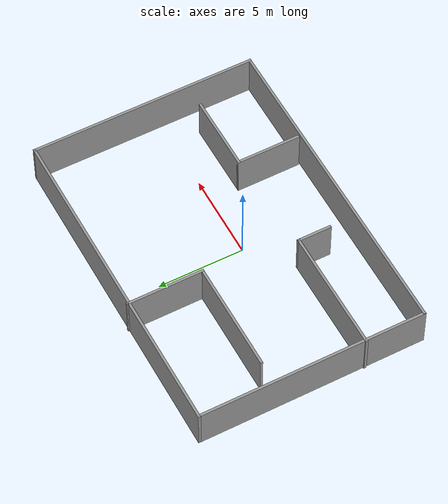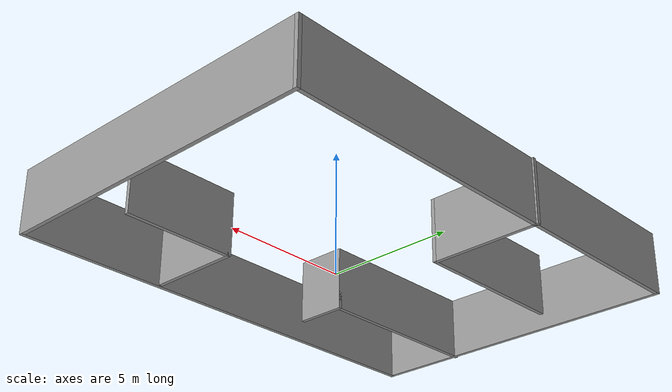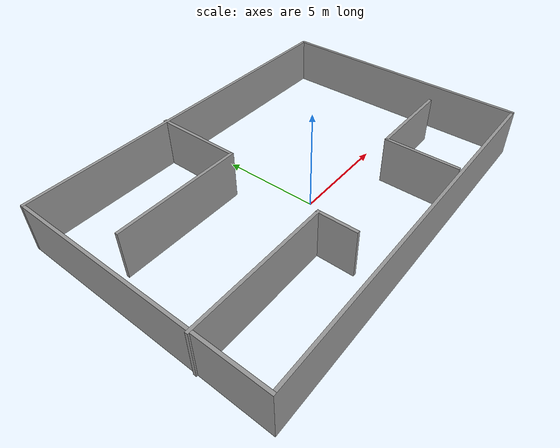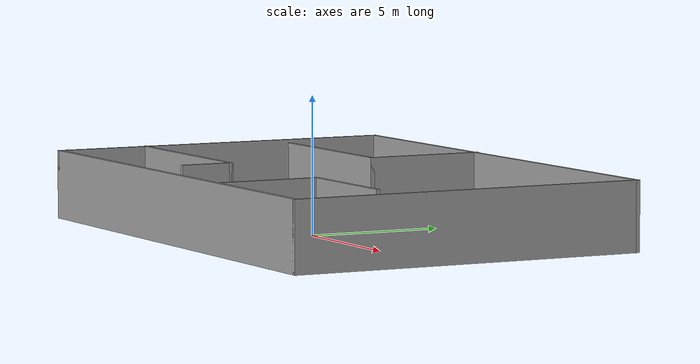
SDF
<?xml version='1.0'?>
<sdf version='1.7'>
  <model name='room'>
    <pose>0.005055 1.04085 0 0 -0 0</pose>
    <link name='Wall_14'>
      <collision name='Wall_14_Collision'>
        <geometry>
          <box>
            <size>13.25 0.15 2.5</size>
          </box>
        </geometry>
        <pose>0 0 1.25 0 -0 0</pose>
      </collision>
      <visual name='Wall_14_Visual'>
        <pose>0 0 1.25 0 -0 0</pose>
        <geometry>
          <box>
            <size>13.25 0.15 2.5</size>
          </box>
        </geometry>
        <material>
          <script>
            <uri>file://media/materials/scripts/gazebo.material</uri>
            <name>Gazebo/Grey</name>
          </script>
          <ambient>1 1 1 1</ambient>
        </material>
        <meta>
          <layer>0</layer>
        </meta>
      </visual>
      <pose>-9.38962 -0.035378 0 0 -0 -1.5708</pose>
    </link>
    <link name='Wall_15'>
      <collision name='Wall_15_Collision'>
        <geometry>
          <box>
            <size>19 0.15 2.5</size>
          </box>
        </geometry>
        <pose>0 0 1.25 0 -0 0</pose>
      </collision>
      <visual name='Wall_15_Visual'>
        <pose>0 0 1.25 0 -0 0</pose>
        <geometry>
          <box>
            <size>19 0.15 2.5</size>
          </box>
        </geometry>
        <material>
          <script>
            <uri>file://media/materials/scripts/gazebo.material</uri>
            <name>Gazebo/Grey</name>
          </script>
          <ambient>1 1 1 1</ambient>
        </material>
        <meta>
          <layer>0</layer>
        </meta>
      </visual>
      <pose>0.035378 -6.58538 0 0 -0 0</pose>
    </link>
    <link name='Wall_16'>
      <collision name='Wall_16_Collision'>
        <geometry>
          <box>
            <size>13.25 0.15 2.5</size>
          </box>
        </geometry>
        <pose>0 0 1.25 0 -0 0</pose>
      </collision>
      <visual name='Wall_16_Visual'>
        <pose>0 0 1.25 0 -0 0</pose>
        <geometry>
          <box>
            <size>13.25 0.15 2.5</size>
          </box>
        </geometry>
        <material>
          <script>
            <uri>file://media/materials/scripts/gazebo.material</uri>
            <name>Gazebo/Grey</name>
          </script>
          <ambient>1 1 1 1</ambient>
        </material>
        <meta>
          <layer>0</layer>
        </meta>
      </visual>
      <pose>9.46038 -0.035378 0 0 -0 1.5708</pose>
    </link>
    <link name='Wall_17'>
      <collision name='Wall_17_Collision'>
        <geometry>
          <box>
            <size>19 0.15 2.5</size>
          </box>
        </geometry>
        <pose>0 0 1.25 0 -0 0</pose>
      </collision>
      <visual name='Wall_17_Visual'>
        <pose>0 0 1.25 0 -0 0</pose>
        <geometry>
          <box>
            <size>19 0.15 2.5</size>
          </box>
        </geometry>
        <material>
          <script>
            <uri>file://media/materials/scripts/gazebo.material</uri>
            <name>Gazebo/Grey</name>
          </script>
          <ambient>1 1 1 1</ambient>
        </material>
        <meta>
          <layer>0</layer>
        </meta>
      </visual>
      <pose>0.035378 6.51462 0 0 -0 3.14159</pose>
    </link>
    <link name='Wall_19'>
      <collision name='Wall_19_Collision'>
        <geometry>
          <box>
            <size>4.5 0.15 2.5</size>
          </box>
        </geometry>
        <pose>0 0 1.25 0 -0 0</pose>
      </collision>
      <visual name='Wall_19_Visual'>
        <pose>0 0 1.25 0 -0 0</pose>
        <geometry>
          <box>
            <size>4.5 0.15 2.5</size>
          </box>
        </geometry>
        <material>
          <script>
            <uri>file://media/materials/scripts/gazebo.material</uri>
            <name>Gazebo/Grey</name>
          </script>
          <ambient>1 1 1 1</ambient>
        </material>
        <meta>
          <layer>0</layer>
        </meta>
      </visual>
      <pose>-1.6771 4.41038 0 0 -0 -1.5708</pose>
    </link>
    <link name='Wall_20'>
      <collision name='Wall_20_Collision'>
        <geometry>
          <box>
            <size>6.5 0.15 2.5</size>
          </box>
        </geometry>
        <pose>0 0 1.25 0 -0 0</pose>
      </collision>
      <visual name='Wall_20_Visual'>
        <pose>0 0 1.25 0 -0 0</pose>
        <geometry>
          <box>
            <size>6.5 0.15 2.5</size>
          </box>
        </geometry>
        <material>
          <script>
            <uri>file://media/materials/scripts/gazebo.material</uri>
            <name>Gazebo/Grey</name>
          </script>
          <ambient>1 1 1 1</ambient>
        </material>
        <meta>
          <layer>0</layer>
        </meta>
      </visual>
      <pose>-4.8521 2.23538 0 0 -0 3.14159</pose>
    </link>
    <link name='Wall_22'>
      <collision name='Wall_22_Collision'>
        <geometry>
          <box>
            <size>7.25 0.15 2.5</size>
          </box>
        </geometry>
        <pose>0 0 1.25 0 -0 0</pose>
      </collision>
      <visual name='Wall_22_Visual'>
        <pose>0 0 1.25 0 -0 0</pose>
        <geometry>
          <box>
            <size>7.25 0.15 2.5</size>
          </box>
        </geometry>
        <material>
          <script>
            <uri>file://media/materials/scripts/gazebo.material</uri>
            <name>Gazebo/Grey</name>
          </script>
          <ambient>1 1 1 1</ambient>
        </material>
        <meta>
          <layer>0</layer>
        </meta>
      </visual>
      <pose>-5.91038 -3.10834 0 0 -0 0</pose>
    </link>
    <link name='Wall_23'>
      <collision name='Wall_23_Collision'>
        <geometry>
          <box>
            <size>2 0.15 2.5</size>
          </box>
        </geometry>
        <pose>0 0 1.25 0 -0 0</pose>
      </collision>
      <visual name='Wall_23_Visual'>
        <pose>0 0 1.25 0 -0 0</pose>
        <geometry>
          <box>
            <size>2 0.15 2.5</size>
          </box>
        </geometry>
        <material>
          <script>
            <uri>file://media/materials/scripts/gazebo.material</uri>
            <name>Gazebo/Grey</name>
          </script>
          <ambient>1 1 1 1</ambient>
        </material>
        <meta>
          <layer>0</layer>
        </meta>
      </visual>
      <pose>-2.36038 -4.03334 0 0 -0 -1.5708</pose>
    </link>
    <link name='Wall_25'>
      <collision name='Wall_25_Collision'>
        <geometry>
          <box>
            <size>3.75 0.15 2.5</size>
          </box>
        </geometry>
        <pose>0 0 1.25 0 -0 0</pose>
      </collision>
      <visual name='Wall_25_Visual'>
        <pose>0 0 1.25 0 -0 0</pose>
        <geometry>
          <box>
            <size>3.75 0.15 2.5</size>
          </box>
        </geometry>
        <material>
          <script>
            <uri>file://media/materials/scripts/gazebo.material</uri>
            <name>Gazebo/Grey</name>
          </script>
          <ambient>1 1 1 1</ambient>
        </material>
        <meta>
          <layer>0</layer>
        </meta>
      </visual>
      <pose>3.62968 -4.56316 0 0 -0 1.5708</pose>
    </link>
    <link name='Wall_26'>
      <collision name='Wall_26_Collision'>
        <geometry>
          <box>
            <size>4.5 0.15 2.5</size>
          </box>
        </geometry>
        <pose>0 0 1.25 0 -0 0</pose>
      </collision>
      <visual name='Wall_26_Visual'>
        <pose>0 0 1.25 0 -0 0</pose>
        <geometry>
          <box>
            <size>4.5 0.15 2.5</size>
          </box>
        </geometry>
        <material>
          <script>
            <uri>file://media/materials/scripts/gazebo.material</uri>
            <name>Gazebo/Grey</name>
          </script>
          <ambient>1 1 1 1</ambient>
        </material>
        <meta>
          <layer>0</layer>
        </meta>
      </visual>
      <pose>5.80468 -2.76316 0 0 -0 0</pose>
    </link>
    <static>1</static>
  </model>
</sdf>
